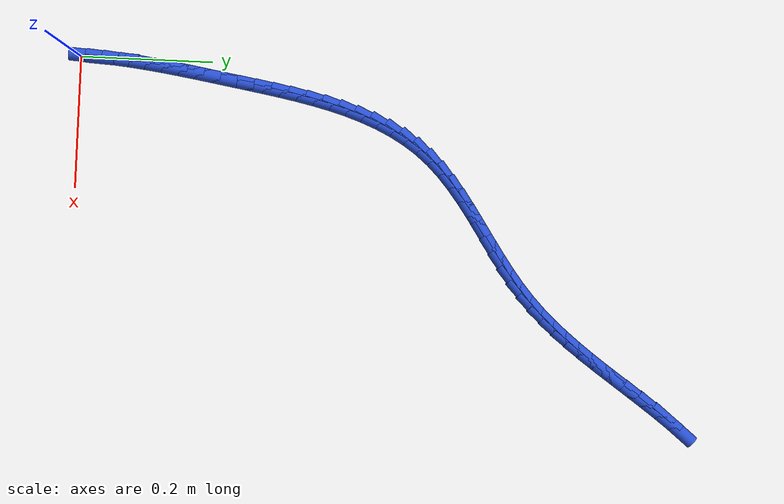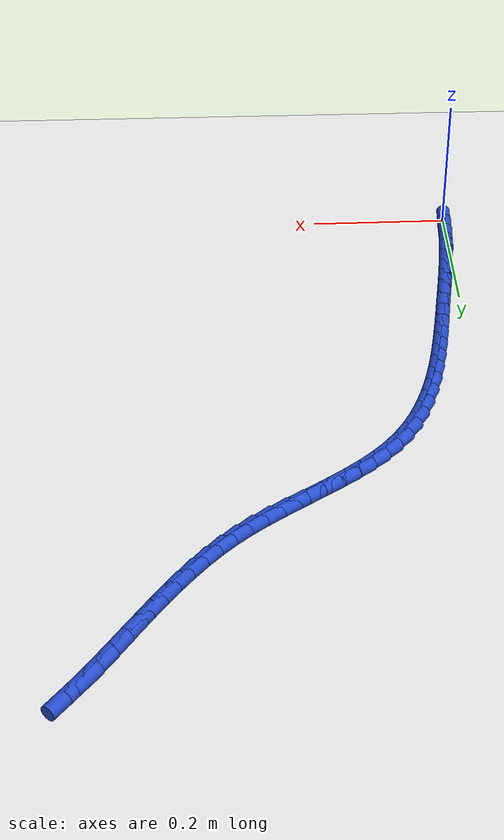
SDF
<sdf version="1.6">
 <world name="default">
  <model name="ground_plane">
   <static>1</static>
   <link name="link">
    <collision name="collision">
     <geometry><plane><normal>0 0 1</normal><size>100 100</size></plane></geometry>
     <surface><friction><ode><mu>100</mu><mu2>50</mu2></ode></friction></surface>
    </collision>
    <visual name="visual">
     <cast_shadows>0</cast_shadows>
     <geometry><plane><normal>0 0 1</normal><size>100 100</size></plane></geometry>
     <material>
      <script><uri>file://media/materials/scripts/gazebo.material</uri><name>Gazebo/WhiteGlow</name></script>
     </material>
    </visual>
   </link>
  </model>
  <model name="line">
   <link name="link_1">
    <pose>0.0009274351517306487 0.025181522638676877 0.01 0 1.57 1.5053725256804775</pose>
    <collision name="collision">
     <geometry><cylinder><radius>0.01</radius><length>0.08</length></cylinder></geometry>
    </collision>
    <visual name="visual">
     <material>
      <script><name>Gazebo/Blue</name><uri>file://media/materials/scripts/gazebo.material</uri></script>
     </material>
     <geometry><cylinder><radius>0.01</radius><length>0.08</length></cylinder></geometry>
    </visual>
   </link>
   <link name="link_2">
    <pose>0.0025709081407248808 0.05026608595606695 0.01 0 1.57 1.4801818989352191</pose>
    <collision name="collision">
     <geometry><cylinder><radius>0.01</radius><length>0.08</length></cylinder></geometry>
    </collision>
    <visual name="visual">
     <material>
      <script><name>Gazebo/Blue</name><uri>file://media/materials/scripts/gazebo.material</uri></script>
     </material>
     <geometry><cylinder><radius>0.01</radius><length>0.08</length></cylinder></geometry>
    </visual>
   </link>
   <link name="link_3">
    <pose>0.004845414192400432 0.07529827333623466 0.01 0 1.57 1.458558620652903</pose>
    <collision name="collision">
     <geometry><cylinder><radius>0.01</radius><length>0.08</length></cylinder></geometry>
    </collision>
    <visual name="visual">
     <material>
      <script><name>Gazebo/Blue</name><uri>file://media/materials/scripts/gazebo.material</uri></script>
     </material>
     <geometry><cylinder><radius>0.01</radius><length>0.08</length></cylinder></geometry>
    </visual>
   </link>
   <link name="link_4">
    <pose>0.0076659485321750095 0.10032266816324444 0.01 0 1.57 1.4405952435260345</pose>
    <collision name="collision">
     <geometry><cylinder><radius>0.01</radius><length>0.08</length></cylinder></geometry>
    </collision>
    <visual name="visual">
     <material>
      <script><name>Gazebo/Blue</name><uri>file://media/materials/scripts/gazebo.material</uri></script>
     </material>
     <geometry><cylinder><radius>0.01</radius><length>0.08</length></cylinder></geometry>
    </visual>
   </link>
   <link name="link_5">
    <pose>0.01094750638546634 0.12538385382116074 0.01 0 1.57 1.426336170725187</pose>
    <collision name="collision">
     <geometry><cylinder><radius>0.01</radius><length>0.08</length></cylinder></geometry>
    </collision>
    <visual name="visual">
     <material>
      <script><name>Gazebo/Blue</name><uri>file://media/materials/scripts/gazebo.material</uri></script>
     </material>
     <geometry><cylinder><radius>0.01</radius><length>0.08</length></cylinder></geometry>
    </visual>
   </link>
   <link name="link_6">
    <pose>0.01460508297769213 0.15052641369404796 0.01 0 1.57 1.4157847231987168</pose>
    <collision name="collision">
     <geometry><cylinder><radius>0.01</radius><length>0.08</length></cylinder></geometry>
    </collision>
    <visual name="visual">
     <material>
      <script><name>Gazebo/Blue</name><uri>file://media/materials/scripts/gazebo.material</uri></script>
     </material>
     <geometry><cylinder><radius>0.01</radius><length>0.08</length></cylinder></geometry>
    </visual>
   </link>
   <link name="link_7">
    <pose>0.018553673534270104 0.17579493116597053 0.01 0 1.57 1.4089097297832713</pose>
    <collision name="collision">
     <geometry><cylinder><radius>0.01</radius><length>0.08</length></cylinder></geometry>
    </collision>
    <visual name="visual">
     <material>
      <script><name>Gazebo/Blue</name><uri>file://media/materials/scripts/gazebo.material</uri></script>
     </material>
     <geometry><cylinder><radius>0.01</radius><length>0.08</length></cylinder></geometry>
    </visual>
   </link>
   <link name="link_8">
    <pose>0.022708273280617974 0.20123398962099284 0.01 0 1.57 1.4056511756160563</pose>
    <collision name="collision">
     <geometry><cylinder><radius>0.01</radius><length>0.08</length></cylinder></geometry>
    </collision>
    <visual name="visual">
     <material>
      <script><name>Gazebo/Blue</name><uri>file://media/materials/scripts/gazebo.material</uri></script>
     </material>
     <geometry><cylinder><radius>0.01</radius><length>0.08</length></cylinder></geometry>
    </visual>
   </link>
   <link name="link_9">
    <pose>0.026983877442153456 0.22688817244317938 0.01 0 1.57 1.4056824515666588</pose>
    <collision name="collision">
     <geometry><cylinder><radius>0.01</radius><length>0.08</length></cylinder></geometry>
    </collision>
    <visual name="visual">
     <material>
      <script><name>Gazebo/Blue</name><uri>file://media/materials/scripts/gazebo.material</uri></script>
     </material>
     <geometry><cylinder><radius>0.01</radius><length>0.08</length></cylinder></geometry>
    </visual>
   </link>
   <link name="link_10">
    <pose>0.03130119356682461 0.25279762967780856 0.01 0 1.57 1.4038542729794004</pose>
    <collision name="collision">
     <geometry><cylinder><radius>0.01</radius><length>0.08</length></cylinder></geometry>
    </collision>
    <visual name="visual">
     <material>
      <script><name>Gazebo/Blue</name><uri>file://media/materials/scripts/gazebo.material</uri></script>
     </material>
     <geometry><cylinder><radius>0.01</radius><length>0.08</length></cylinder></geometry>
    </visual>
   </link>
   <link name="link_11">
    <pose>0.035701252915136025 0.2789091280258325 0.01 0 1.57 1.3953896338001182</pose>
    <collision name="collision">
     <geometry><cylinder><radius>0.01</radius><length>0.08</length></cylinder></geometry>
    </collision>
    <visual name="visual">
     <material>
      <script><name>Gazebo/Blue</name><uri>file://media/materials/scripts/gazebo.material</uri></script>
     </material>
     <geometry><cylinder><radius>0.01</radius><length>0.08</length></cylinder></geometry>
    </visual>
   </link>
   <link name="link_12">
    <pose>0.04033956917689046 0.3050805842692029 0.01 0 1.57 1.3800640167072322</pose>
    <collision name="collision">
     <geometry><cylinder><radius>0.01</radius><length>0.08</length></cylinder></geometry>
    </collision>
    <visual name="visual">
     <material>
      <script><name>Gazebo/Blue</name><uri>file://media/materials/scripts/gazebo.material</uri></script>
     </material>
     <geometry><cylinder><radius>0.01</radius><length>0.08</length></cylinder></geometry>
    </visual>
   </link>
   <link name="link_13">
    <pose>0.04537619920073838 0.3311663892400986 0.01 0 1.57 1.357679555874147</pose>
    <collision name="collision">
     <geometry><cylinder><radius>0.01</radius><length>0.08</length></cylinder></geometry>
    </collision>
    <visual name="visual">
     <material>
      <script><name>Gazebo/Blue</name><uri>file://media/materials/scripts/gazebo.material</uri></script>
     </material>
     <geometry><cylinder><radius>0.01</radius><length>0.08</length></cylinder></geometry>
    </visual>
   </link>
   <link name="link_14">
    <pose>0.050971199835330196 0.3570209337706978 0.01 0 1.57 1.327887093391454</pose>
    <collision name="collision">
     <geometry><cylinder><radius>0.01</radius><length>0.08</length></cylinder></geometry>
    </collision>
    <visual name="visual">
     <material>
      <script><name>Gazebo/Blue</name><uri>file://media/materials/scripts/gazebo.material</uri></script>
     </material>
     <geometry><cylinder><radius>0.01</radius><length>0.08</length></cylinder></geometry>
    </visual>
   </link>
   <link name="link_15">
    <pose>0.05728462792931636 0.3824986086931794 0.01 0 1.57 1.2902065460829704</pose>
    <collision name="collision">
     <geometry><cylinder><radius>0.01</radius><length>0.08</length></cylinder></geometry>
    </collision>
    <visual name="visual">
     <material>
      <script><name>Gazebo/Blue</name><uri>file://media/materials/scripts/gazebo.material</uri></script>
     </material>
     <geometry><cylinder><radius>0.01</radius><length>0.08</length></cylinder></geometry>
    </visual>
   </link>
   <link name="link_16">
    <pose>0.0644765403313473 0.40745380483972193 0.01 0 1.57 1.2440606908791365</pose>
    <collision name="collision">
     <geometry><cylinder><radius>0.01</radius><length>0.08</length></cylinder></geometry>
    </collision>
    <visual name="visual">
     <material>
      <script><name>Gazebo/Blue</name><uri>file://media/materials/scripts/gazebo.material</uri></script>
     </material>
     <geometry><cylinder><radius>0.01</radius><length>0.08</length></cylinder></geometry>
    </visual>
   </link>
   <link name="link_17">
    <pose>0.07270699389007342 0.43174091304250384 0.01 0 1.57 1.1888332767766767</pose>
    <collision name="collision">
     <geometry><cylinder><radius>0.01</radius><length>0.08</length></cylinder></geometry>
    </collision>
    <visual name="visual">
     <material>
      <script><name>Gazebo/Blue</name><uri>file://media/materials/scripts/gazebo.material</uri></script>
     </material>
     <geometry><cylinder><radius>0.01</radius><length>0.08</length></cylinder></geometry>
    </visual>
   </link>
   <link name="link_18">
    <pose>0.0821360454541452 0.455214324133704 0.01 0 1.57 1.1239647724169817</pose>
    <collision name="collision">
     <geometry><cylinder><radius>0.01</radius><length>0.08</length></cylinder></geometry>
    </collision>
    <visual name="visual">
     <material>
      <script><name>Gazebo/Blue</name><uri>file://media/materials/scripts/gazebo.material</uri></script>
     </material>
     <geometry><cylinder><radius>0.01</radius><length>0.08</length></cylinder></geometry>
    </visual>
   </link>
   <link name="link_19">
    <pose>0.09292375187221302 0.4777284289455006 0.01 0 1.57 1.0490977574368707</pose>
    <collision name="collision">
     <geometry><cylinder><radius>0.01</radius><length>0.08</length></cylinder></geometry>
    </collision>
    <visual name="visual">
     <material>
      <script><name>Gazebo/Blue</name><uri>file://media/materials/scripts/gazebo.material</uri></script>
     </material>
     <geometry><cylinder><radius>0.01</radius><length>0.08</length></cylinder></geometry>
    </visual>
   </link>
   <link name="link_20">
    <pose>0.10523016999292738 0.49913761831007253 0.01 0 1.57 0.9642735368970907</pose>
    <collision name="collision">
     <geometry><cylinder><radius>0.01</radius><length>0.08</length></cylinder></geometry>
    </collision>
    <visual name="visual">
     <material>
      <script><name>Gazebo/Blue</name><uri>file://media/materials/scripts/gazebo.material</uri></script>
     </material>
     <geometry><cylinder><radius>0.01</radius><length>0.08</length></cylinder></geometry>
    </visual>
   </link>
   <link name="link_21">
    <pose>0.11921535666493863 0.5192962830595982 0.01 0 1.57 0.8706599605848814</pose>
    <collision name="collision">
     <geometry><cylinder><radius>0.01</radius><length>0.08</length></cylinder></geometry>
    </collision>
    <visual name="visual">
     <material>
      <script><name>Gazebo/Blue</name><uri>file://media/materials/scripts/gazebo.material</uri></script>
     </material>
     <geometry><cylinder><radius>0.01</radius><length>0.08</length></cylinder></geometry>
    </visual>
   </link>
   <link name="link_22">
    <pose>0.13502980089519595 0.5380666573283572 0.01 0 1.57 0.7814361946580123</pose>
    <collision name="collision">
     <geometry><cylinder><radius>0.01</radius><length>0.08</length></cylinder></geometry>
    </collision>
    <visual name="visual">
     <material>
      <script><name>Gazebo/Blue</name><uri>file://media/materials/scripts/gazebo.material</uri></script>
     </material>
     <geometry><cylinder><radius>0.01</radius><length>0.08</length></cylinder></geometry>
    </visual>
   </link>
   <link name="link_23">
    <pose>0.15259802079737098 0.5554962163987637 0.01 0 1.57 0.7093450802969794</pose>
    <collision name="collision">
     <geometry><cylinder><radius>0.01</radius><length>0.08</length></cylinder></geometry>
    </collision>
    <visual name="visual">
     <material>
      <script><name>Gazebo/Blue</name><uri>file://media/materials/scripts/gazebo.material</uri></script>
     </material>
     <geometry><cylinder><radius>0.01</radius><length>0.08</length></cylinder></geometry>
    </visual>
   </link>
   <link name="link_24">
    <pose>0.17161523035400042 0.571820409145351 0.01 0 1.57 0.6545022769537067</pose>
    <collision name="collision">
     <geometry><cylinder><radius>0.01</radius><length>0.08</length></cylinder></geometry>
    </collision>
    <visual name="visual">
     <material>
      <script><name>Gazebo/Blue</name><uri>file://media/materials/scripts/gazebo.material</uri></script>
     </material>
     <geometry><cylinder><radius>0.01</radius><length>0.08</length></cylinder></geometry>
    </visual>
   </link>
   <link name="link_25">
    <pose>0.19176640901353828 0.5872830742702827 0.01 0 1.57 0.6160154124690302</pose>
    <collision name="collision">
     <geometry><cylinder><radius>0.01</radius><length>0.08</length></cylinder></geometry>
    </collision>
    <visual name="visual">
     <material>
      <script><name>Gazebo/Blue</name><uri>file://media/materials/scripts/gazebo.material</uri></script>
     </material>
     <geometry><cylinder><radius>0.01</radius><length>0.08</length></cylinder></geometry>
    </visual>
   </link>
   <link name="link_26">
    <pose>0.2127365362244386 0.6021280504757226 0.01 0 1.57 0.5929859120009084</pose>
    <collision name="collision">
     <geometry><cylinder><radius>0.01</radius><length>0.08</length></cylinder></geometry>
    </collision>
    <visual name="visual">
     <material>
      <script><name>Gazebo/Blue</name><uri>file://media/materials/scripts/gazebo.material</uri></script>
     </material>
     <geometry><cylinder><radius>0.01</radius><length>0.08</length></cylinder></geometry>
    </visual>
   </link>
   <link name="link_27">
    <pose>0.23421059143515535 0.6165991764638342 0.01 0 1.57 0.584772356523271</pose>
    <collision name="collision">
     <geometry><cylinder><radius>0.01</radius><length>0.08</length></cylinder></geometry>
    </collision>
    <visual name="visual">
     <material>
      <script><name>Gazebo/Blue</name><uri>file://media/materials/scripts/gazebo.material</uri></script>
     </material>
     <geometry><cylinder><radius>0.01</radius><length>0.08</length></cylinder></geometry>
    </visual>
   </link>
   <link name="link_28">
    <pose>0.2558735540941427 0.6309402909367814 0.01 0 1.57 0.5911155588862479</pose>
    <collision name="collision">
     <geometry><cylinder><radius>0.01</radius><length>0.08</length></cylinder></geometry>
    </collision>
    <visual name="visual">
     <material>
      <script><name>Gazebo/Blue</name><uri>file://media/materials/scripts/gazebo.material</uri></script>
     </material>
     <geometry><cylinder><radius>0.01</radius><length>0.08</length></cylinder></geometry>
    </visual>
   </link>
   <link name="link_29">
    <pose>0.2774104036498544 0.6453952325967274 0.01 0 1.57 0.6121754178002337</pose>
    <collision name="collision">
     <geometry><cylinder><radius>0.01</radius><length>0.08</length></cylinder></geometry>
    </collision>
    <visual name="visual">
     <material>
      <script><name>Gazebo/Blue</name><uri>file://media/materials/scripts/gazebo.material</uri></script>
     </material>
     <geometry><cylinder><radius>0.01</radius><length>0.08</length></cylinder></geometry>
    </visual>
   </link>
   <link name="link_30">
    <pose>0.29850611955074474 0.6602078401458363 0.01 0 1.57 0.648499190710735</pose>
    <collision name="collision">
     <geometry><cylinder><radius>0.01</radius><length>0.08</length></cylinder></geometry>
    </collision>
    <visual name="visual">
     <material>
      <script><name>Gazebo/Blue</name><uri>file://media/materials/scripts/gazebo.material</uri></script>
     </material>
     <geometry><cylinder><radius>0.01</radius><length>0.08</length></cylinder></geometry>
    </visual>
   </link>
   <link name="link_31">
    <pose>0.3188456812452676 0.6756219522862716 0.01 0 1.57 0.7005443801936809</pose>
    <collision name="collision">
     <geometry><cylinder><radius>0.01</radius><length>0.08</length></cylinder></geometry>
    </collision>
    <visual name="visual">
     <material>
      <script><name>Gazebo/Blue</name><uri>file://media/materials/scripts/gazebo.material</uri></script>
     </material>
     <geometry><cylinder><radius>0.01</radius><length>0.08</length></cylinder></geometry>
    </visual>
   </link>
   <link name="link_32">
    <pose>0.3381222324329792 0.6918763141746251 0.01 0 1.57 0.7586901255743843</pose>
    <collision name="collision">
     <geometry><cylinder><radius>0.01</radius><length>0.08</length></cylinder></geometry>
    </collision>
    <visual name="visual">
     <material>
      <script><name>Gazebo/Blue</name><uri>file://media/materials/scripts/gazebo.material</uri></script>
     </material>
     <geometry><cylinder><radius>0.01</radius><length>0.08</length></cylinder></geometry>
    </visual>
   </link>
   <link name="link_33">
    <pose>0.3562569998123229 0.7090673736355638 0.01 0 1.57 0.8109117768195722</pose>
    <collision name="collision">
     <geometry><cylinder><radius>0.01</radius><length>0.08</length></cylinder></geometry>
    </collision>
    <visual name="visual">
     <material>
      <script><name>Gazebo/Blue</name><uri>file://media/materials/scripts/gazebo.material</uri></script>
     </material>
     <geometry><cylinder><radius>0.01</radius><length>0.08</length></cylinder></geometry>
    </visual>
   </link>
   <link name="link_34">
    <pose>0.37342422299148 0.727133727789522 0.01 0 1.57 0.8557585079516992</pose>
    <collision name="collision">
     <geometry><cylinder><radius>0.01</radius><length>0.08</length></cylinder></geometry>
    </collision>
    <visual name="visual">
     <material>
      <script><name>Gazebo/Blue</name><uri>file://media/materials/scripts/gazebo.material</uri></script>
     </material>
     <geometry><cylinder><radius>0.01</radius><length>0.08</length></cylinder></geometry>
    </visual>
   </link>
   <link name="link_35">
    <pose>0.3898113086360143 0.7460057590406061 0.01 0 1.57 0.892709546757612</pose>
    <collision name="collision">
     <geometry><cylinder><radius>0.01</radius><length>0.08</length></cylinder></geometry>
    </collision>
    <visual name="visual">
     <material>
      <script><name>Gazebo/Blue</name><uri>file://media/materials/scripts/gazebo.material</uri></script>
     </material>
     <geometry><cylinder><radius>0.01</radius><length>0.08</length></cylinder></geometry>
    </visual>
   </link>
   <link name="link_36">
    <pose>0.4056056634114896 0.765613849792922 0.01 0 1.57 0.9215393939670298</pose>
    <collision name="collision">
     <geometry><cylinder><radius>0.01</radius><length>0.08</length></cylinder></geometry>
    </collision>
    <visual name="visual">
     <material>
      <script><name>Gazebo/Blue</name><uri>file://media/materials/scripts/gazebo.material</uri></script>
     </material>
     <geometry><cylinder><radius>0.01</radius><length>0.08</length></cylinder></geometry>
    </visual>
   </link>
   <link name="link_37">
    <pose>0.4209946939834701 0.7858883824505769 0.01 0 1.57 0.9422525304581245</pose>
    <collision name="collision">
     <geometry><cylinder><radius>0.01</radius><length>0.08</length></cylinder></geometry>
    </collision>
    <visual name="visual">
     <material>
      <script><name>Gazebo/Blue</name><uri>file://media/materials/scripts/gazebo.material</uri></script>
     </material>
     <geometry><cylinder><radius>0.01</radius><length>0.08</length></cylinder></geometry>
    </visual>
   </link>
   <link name="link_38">
    <pose>0.43616580701751995 0.8067597394176774 0.01 0 1.57 0.9550196924728335</pose>
    <collision name="collision">
     <geometry><cylinder><radius>0.01</radius><length>0.08</length></cylinder></geometry>
    </collision>
    <visual name="visual">
     <material>
      <script><name>Gazebo/Blue</name><uri>file://media/materials/scripts/gazebo.material</uri></script>
     </material>
     <geometry><cylinder><radius>0.01</radius><length>0.08</length></cylinder></geometry>
    </visual>
   </link>
   <link name="link_39">
    <pose>0.45130640917920295 0.8281583030983296 0.01 0 1.57 0.9601259022935649</pose>
    <collision name="collision">
     <geometry><cylinder><radius>0.01</radius><length>0.08</length></cylinder></geometry>
    </collision>
    <visual name="visual">
     <material>
      <script><name>Gazebo/Blue</name><uri>file://media/materials/scripts/gazebo.material</uri></script>
     </material>
     <geometry><cylinder><radius>0.01</radius><length>0.08</length></cylinder></geometry>
    </visual>
   </link>
   <link name="link_40">
    <pose>0.46660390667654905 0.850014454698993 0.01 0 1.57 0.9573834057649223</pose>
    <collision name="collision">
     <geometry><cylinder><radius>0.01</radius><length>0.08</length></cylinder></geometry>
    </collision>
    <visual name="visual">
     <material>
      <script><name>Gazebo/Blue</name><uri>file://media/materials/scripts/gazebo.material</uri></script>
     </material>
     <geometry><cylinder><radius>0.01</radius><length>0.08</length></cylinder></geometry>
    </visual>
   </link>
   <link name="link_41">
    <pose>0.4822239821156335 0.8722017114166074 0.01 0 1.57 0.9450894593575524</pose>
    <collision name="collision">
     <geometry><cylinder><radius>0.01</radius><length>0.08</length></cylinder></geometry>
    </collision>
    <visual name="visual">
     <material>
      <script><name>Gazebo/Blue</name><uri>file://media/materials/scripts/gazebo.material</uri></script>
     </material>
     <geometry><cylinder><radius>0.01</radius><length>0.08</length></cylinder></geometry>
    </visual>
   </link>
   <link name="link_42">
    <pose>0.49825251416043354 0.8943846945139798 0.01 0 1.57 0.9226713528026133</pose>
    <collision name="collision">
     <geometry><cylinder><radius>0.01</radius><length>0.08</length></cylinder></geometry>
    </collision>
    <visual name="visual">
     <material>
      <script><name>Gazebo/Blue</name><uri>file://media/materials/scripts/gazebo.material</uri></script>
     </material>
     <geometry><cylinder><radius>0.01</radius><length>0.08</length></cylinder></geometry>
    </visual>
   </link>
   <link name="link_43">
    <pose>0.5147570606275476 0.9161800683431847 0.01 0 1.57 0.8894612419853342</pose>
    <collision name="collision">
     <geometry><cylinder><radius>0.01</radius><length>0.08</length></cylinder></geometry>
    </collision>
    <visual name="visual">
     <material>
      <script><name>Gazebo/Blue</name><uri>file://media/materials/scripts/gazebo.material</uri></script>
     </material>
     <geometry><cylinder><radius>0.01</radius><length>0.08</length></cylinder></geometry>
    </visual>
   </link>
   <link name="link_262">
    <pose>0.002701275400018007 0.050146652297091476 0.01 0 1.57 1.5169808267703675</pose>
    <collision name="collision">
     <geometry><cylinder><radius>0.01</radius><length>0.08</length></cylinder></geometry>
    </collision>
    <visual name="visual">
     <material>
      <script><name>Gazebo/Blue</name><uri>file://media/materials/scripts/gazebo.material</uri></script>
     </material>
     <geometry><cylinder><radius>0.01</radius><length>0.08</length></cylinder></geometry>
    </visual>
   </link>
  </model>
 </world>
</sdf>
